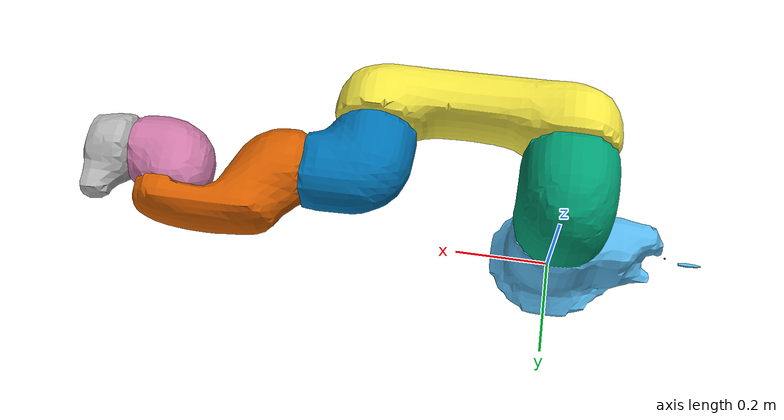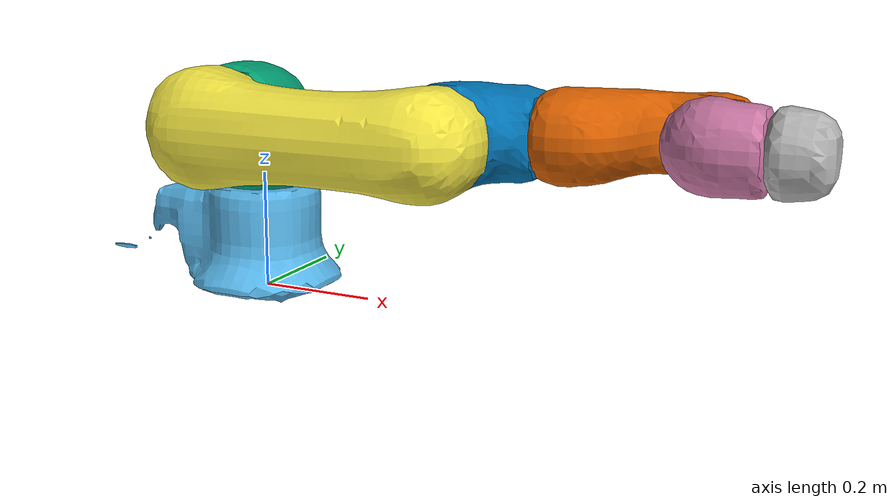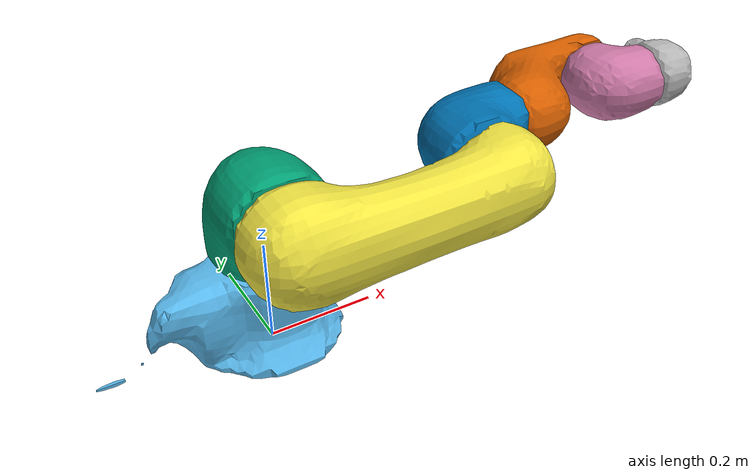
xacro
<?xml version="1.0"?>
<robot xmlns:xacro="http://www.ros.org/wiki/xacro" name="lbr_iisy15_r930">
  <!-- Import iisy macro files  -->
  <xacro:include filename="$(find kuka_lbr_iisy_support)/urdf/lbr_iisy15_r930_macro.xacro"/>
  <xacro:include filename="$(find kuka_lbr_iisy_support)/urdf/lbr_iisy_ros2_control_macro.xacro"/>
  <!-- Read additional arguments  -->
  <xacro:arg name="driver_version" default="rsi_only"/>
  <xacro:arg name="mode" default="hardware"/>
  <xacro:arg name="use_gpio" default="false"/>
  <xacro:arg name="roundtrip_time" default="0"/>
  <xacro:arg name="client_ip" default="0.0.0.0"/>
  <xacro:arg name="client_port" default="59152"/>
  <xacro:arg name="mxa_client_port" default="1336"/>
  <xacro:arg name="controller_ip" default="0.0.0.0"/>
  <xacro:arg name="verify_robot_model" default="true"/>
  <xacro:arg name="joint_stiffness" default="[]"/>
  <xacro:arg name="joint_damping" default="[]"/>
  <xacro:arg name="qos_config_file" default=""/>
  <xacro:arg name="prefix" default=""/>
  <xacro:arg name="is_async" default="false"/>
  <xacro:arg name="async_thread_priority" default="69"/>
  <xacro:arg name="async_affinity" default="[]"/>
  <xacro:arg name="x" default="0"/>
  <xacro:arg name="y" default="0"/>
  <xacro:arg name="z" default="0"/>
  <xacro:arg name="roll" default="0"/>
  <xacro:arg name="pitch" default="0"/>
  <xacro:arg name="yaw" default="0"/>
  <xacro:arg name="rsi_xml_config_file" default=""/>
  <xacro:kuka_lbr_iisy_ros2_control name="$(arg prefix)lbr_iisy15_r930" driver_version="$(arg driver_version)" client_ip="$(arg client_ip)" client_port="$(arg client_port)" mxa_client_port="$(arg mxa_client_port)" controller_ip="$(arg controller_ip)" prefix="$(arg prefix)" mode="$(arg mode)" use_gpio="$(arg use_gpio)" roundtrip_time="$(arg roundtrip_time)" verify_robot_model="$(arg verify_robot_model)" qos_config_file="$(arg qos_config_file)" rsi_xml_config_file="$(arg rsi_xml_config_file)" is_async="$(arg is_async)" async_thread_priority="$(arg async_thread_priority)" async_affinity="$(arg async_affinity)" joint_stiffness="$(arg joint_stiffness)" joint_damping="$(arg joint_damping)">
    <ext_axes_ros2_control_joints/>
  </xacro:kuka_lbr_iisy_ros2_control>
  <!-- world link -->
  <link name="world"/>
  <!-- robot links, joints -->
  <xacro:kuka_lbr_iisy15_r930_robot prefix="$(arg prefix)" package_name="kuka_lbr_iisy_support"/>
  <!-- default world - base_link joint -->
  <joint name="$(arg prefix)world-base_link" type="fixed">
    <parent link="world"/>
    <child link="$(arg prefix)base_link"/>
    <origin xyz="$(arg x) $(arg y) $(arg z)" rpy="$(arg roll) $(arg pitch) $(arg yaw)"/>
  </joint>
</robot>

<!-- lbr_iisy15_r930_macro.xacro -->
<robot xmlns:xacro="http://www.ros.org/wiki/xacro" name="lbr_iisy15_r930">
  <!-- include helper xacros -->
  <xacro:include filename="$(find kuka_resources)/urdf/common_materials.xacro"/>
  <xacro:macro name="kuka_lbr_iisy15_r930_robot" params="prefix package_name">
    <!-- links - main serial chain -->
    <link name="${prefix}base_link">
      <collision>
        <geometry>
          <mesh filename="package://${package_name}/meshes/lbr_iisy15_r930/collision/base_link.stl"/>
        </geometry>
        <origin rpy="-0.0 0.0 -0.0" xyz="0.0 0.0 0.0"/>
      </collision>
      <inertial>
        <inertia ixx="1.0" ixy="0.0" ixz="0.0" iyy="1.0" iyz="0.0" izz="1.0"/>
        <mass value="8.666E0"/>
        <origin rpy="0.0 -0.0 0.0" xyz="0.0 0.0 0.0"/>
      </inertial>
      <visual>
        <geometry>
          <mesh filename="package://${package_name}/meshes/lbr_iisy15_r930/visual/base_link.stl"/>
        </geometry>
        <origin rpy="-0.0 0.0 -0.0" xyz="0.0 0.0 0.0"/>
        <xacro:material_kuka_ral_pure_white/>
      </visual>
    </link>
    <link name="${prefix}link_1">
      <collision>
        <geometry>
          <mesh filename="package://${package_name}/meshes/lbr_iisy15_r930/collision/link_1.stl"/>
        </geometry>
        <origin rpy="-0.0 0.0 -0.0" xyz="0.0 0.0 0.0"/>
      </collision>
      <inertial>
        <inertia ixx="0.0489108039022503" ixy="0.0" ixz="0.0" iyy="0.0383705935400879" iyz="0.0" izz="0.0522121642769911"/>
        <mass value="9.62E0"/>
        <origin rpy="-1.3035636348359196 -0.7815781053554747 1.2529437882898196" xyz="0.00344301039501039 0.0191980353430353 -0.08662803846153849"/>
      </inertial>
      <visual>
        <geometry>
          <mesh filename="package://${package_name}/meshes/lbr_iisy15_r930/visual/link_1.stl"/>
        </geometry>
        <origin rpy="-0.0 0.0 -0.0" xyz="0.0 0.0 0.0"/>
        <xacro:material_kuka_ral_pure_white/>
      </visual>
    </link>
    <link name="${prefix}link_2">
      <collision>
        <geometry>
          <mesh filename="package://${package_name}/meshes/lbr_iisy15_r930/collision/link_2.stl"/>
        </geometry>
        <origin rpy="-0.0 0.0 -0.0" xyz="0.0 0.0 0.0"/>
      </collision>
      <inertial>
        <inertia ixx="0.0306168627253135" ixy="0.0" ixz="0.0" iyy="0.252047093745431" iyz="0.0" izz="0.258650362609461"/>
        <mass value="8.079E0"/>
        <origin rpy="-0.017400716172763755 1.2184236596039677E-4 7.609596915052352E-4" xyz="0.144939171927219 4.90834261666048E-4 -0.0453728741180839"/>
      </inertial>
      <visual>
        <geometry>
          <mesh filename="package://${package_name}/meshes/lbr_iisy15_r930/visual/link_2.stl"/>
        </geometry>
        <origin rpy="-0.0 0.0 -0.0" xyz="0.0 0.0 0.0"/>
        <xacro:material_kuka_ral_pure_white/>
      </visual>
    </link>
    <link name="${prefix}link_3">
      <collision>
        <geometry>
          <mesh filename="package://${package_name}/meshes/lbr_iisy15_r930/collision/link_3.stl"/>
        </geometry>
        <origin rpy="-0.0 0.0 -0.0" xyz="0.0 0.0 0.0"/>
      </collision>
      <inertial>
        <inertia ixx="0.0181557035426496" ixy="0.0" ixz="0.0" iyy="0.0346916391676837" iyz="0.0" izz="0.037776951242458"/>
        <mass value="7.6604E0"/>
        <origin rpy="0.1692981167548117 0.5271433699021747 -2.9605806714357508" xyz="0.0400709362435382 0.00400998642368544 0.0499127101717926"/>
      </inertial>
      <visual>
        <geometry>
          <mesh filename="package://${package_name}/meshes/lbr_iisy15_r930/visual/link_3.stl"/>
        </geometry>
        <origin rpy="-0.0 0.0 -0.0" xyz="0.0 0.0 0.0"/>
        <xacro:material_kuka_ral_pure_white/>
      </visual>
    </link>
    <link name="${prefix}link_4">
      <collision>
        <geometry>
          <mesh filename="package://${package_name}/meshes/lbr_iisy15_r930/collision/link_4.stl"/>
        </geometry>
        <origin rpy="-0.0 0.0 -0.0" xyz="0.0 0.0 0.0"/>
      </collision>
      <inertial>
        <inertia ixx="0.0208771593304277" ixy="0.0" ixz="0.0" iyy="0.0526135698207455" iyz="0.0" izz="0.0587485883681802"/>
        <mass value="5.7014E0"/>
        <origin rpy="1.535166999601284 -1.2065715961818437 -1.512863903166617" xyz="0.00141160065948714 0.060839292103693904 -0.12025970463395"/>
      </inertial>
      <visual>
        <geometry>
          <mesh filename="package://${package_name}/meshes/lbr_iisy15_r930/visual/link_4.stl"/>
        </geometry>
        <origin rpy="-0.0 0.0 -0.0" xyz="0.0 0.0 0.0"/>
        <xacro:material_kuka_ral_pure_white/>
      </visual>
    </link>
    <link name="${prefix}link_5">
      <collision>
        <geometry>
          <mesh filename="package://${package_name}/meshes/lbr_iisy15_r930/collision/link_5.stl"/>
        </geometry>
        <origin rpy="-0.0 0.0 -0.0" xyz="0.0 0.0 0.0"/>
      </collision>
      <inertial>
        <inertia ixx="0.00667288072123254" ixy="0.0" ixz="0.0" iyy="0.00503543168148481" iyz="0.0" izz="0.00841044585602456"/>
        <mass value="2.382E0"/>
        <origin rpy="0.4256203528755516 0.1454426479570896 1.2195648324165669" xyz="0.0365444794290512 -0.00829581863979849 -0.0371200125944584"/>
      </inertial>
      <visual>
        <geometry>
          <mesh filename="package://${package_name}/meshes/lbr_iisy15_r930/visual/link_5.stl"/>
        </geometry>
        <origin rpy="-0.0 0.0 -0.0" xyz="0.0 0.0 0.0"/>
        <xacro:material_kuka_ral_pure_white/>
      </visual>
    </link>
    <link name="${prefix}link_6">
      <collision>
        <geometry>
          <mesh filename="package://${package_name}/meshes/lbr_iisy15_r930/collision/link_6.stl"/>
        </geometry>
        <origin rpy="-0.0 0.0 -0.0" xyz="0.0 0.0 0.0"/>
      </collision>
      <inertial>
        <inertia ixx="0.00390274036654823" ixy="0.0" ixz="0.0" iyy="0.00286930887521153" iyz="0.0" izz="0.00403512413298348"/>
        <mass value="1.509E0"/>
        <origin rpy="-0.051936335875096745 -0.1296523529795729 -0.0038347791577379832" xyz="-5.61365142478463E-4 0.00904387011265739 -0.0494449237905898"/>
      </inertial>
      <visual>
        <geometry>
          <mesh filename="package://${package_name}/meshes/lbr_iisy15_r930/visual/link_6.stl"/>
        </geometry>
        <origin rpy="-0.0 0.0 -0.0" xyz="0.0 0.0 0.0"/>
        <xacro:material_kuka_ral_pure_white/>
      </visual>
    </link>
    <!-- joints - main serial chain -->
    <joint name="${prefix}joint_1" type="revolute">
      <axis xyz="0.0 0.0 1.0"/>
      <child link="${prefix}link_1"/>
      <limit effort="398.011277" lower="-3.2288591161895095E0" upper="3.2288591161895095E0" velocity="3.490656"/>
      <origin rpy="${-pi} 0.0 -0.0" xyz="0.0 0.0 0.0"/>
      <parent link="${prefix}base_link"/>
    </joint>
    <joint name="${prefix}joint_2" type="revolute">
      <axis xyz="0.0 0.0 1.0"/>
      <child link="${prefix}link_2"/>
      <limit effort="286.529873" lower="-4.014257279586958E0" upper="8.726646259971648E-1" velocity="3.490656"/>
      <origin rpy="${pi/2.0} 0.0 -0.0" xyz="0.0 0.0 -0.3"/>
      <parent link="${prefix}link_1"/>
    </joint>
    <joint name="${prefix}joint_3" type="revolute">
      <axis xyz="0.0 0.0 1.0"/>
      <child link="${prefix}link_3"/>
      <limit effort="137.666701" lower="-2.6179938779914944E0" upper="2.6179938779914944E0" velocity="3.490656"/>
      <origin rpy="0.0 0.0 ${-pi/2.0}" xyz="0.385 0.0 0.0"/>
      <parent link="${prefix}link_2"/>
    </joint>
    <joint name="${prefix}joint_4" type="revolute">
      <axis xyz="0.0 0.0 1.0"/>
      <child link="${prefix}link_4"/>
      <limit effort="63.574238" lower="-3.141592653589793E0" upper="3.141592653589793E0" velocity="4.014255"/>
      <origin rpy="${pi/2.0} 0.0 -0.0" xyz="0.0 0.0 0.0"/>
      <parent link="${prefix}link_3"/>
    </joint>
    <joint name="${prefix}joint_5" type="revolute">
      <axis xyz="0.0 0.0 1.0"/>
      <child link="${prefix}link_5"/>
      <limit effort="58.580298" lower="-1.9198621771937625E0" upper="1.9198621771937625E0" velocity="4.537856"/>
      <origin rpy="${-pi/2.0} 0.0 -0.0" xyz="0.0 0.0 -0.367"/>
      <parent link="${prefix}link_4"/>
    </joint>
    <joint name="${prefix}joint_6" type="revolute">
      <axis xyz="0.0 0.0 1.0"/>
      <child link="${prefix}link_6"/>
      <limit effort="15.927568" lower="-3.839724354387525E0" upper="3.839724354387525E0" velocity="7.504909"/>
      <origin rpy="${pi/2.0} 0.0 -0.0" xyz="0.0 0.0 0.0"/>
      <parent link="${prefix}link_5"/>
    </joint>
    <!-- ROS-Industrial 'base' frame - equivalent of 'KUKA ROBROOT'-->
    <link name="${prefix}base"/>
    <joint name="${prefix}base_link-base" type="fixed">
      <origin xyz="0 0 0" rpy="0 0 0"/>
      <parent link="${prefix}base_link"/>
      <child link="${prefix}base"/>
    </joint>
    <!-- ROS-Industrial 'flange' frame - attachment point for EEF models -->
    <link name="${prefix}flange"/>
    <joint name="${prefix}link6-flange" type="fixed">
      <child link="${prefix}flange"/>
      <origin rpy="0 ${pi/2} -0.0" xyz="0.0 0.0 -0.178"/>
      <parent link="${prefix}link_6"/>
    </joint>
    <!-- ROS-Industrial 'tool0' frame - all-zeros tool frame -->
    <link name="${prefix}tool0"/>
    <joint name="${prefix}link6-tool0" type="fixed">
      <child link="${prefix}tool0"/>
      <origin rpy="0 ${pi} -0.0" xyz="0.0 0.0 -0.178"/>
      <parent link="${prefix}link_6"/>
    </joint>
  </xacro:macro>
</robot>
